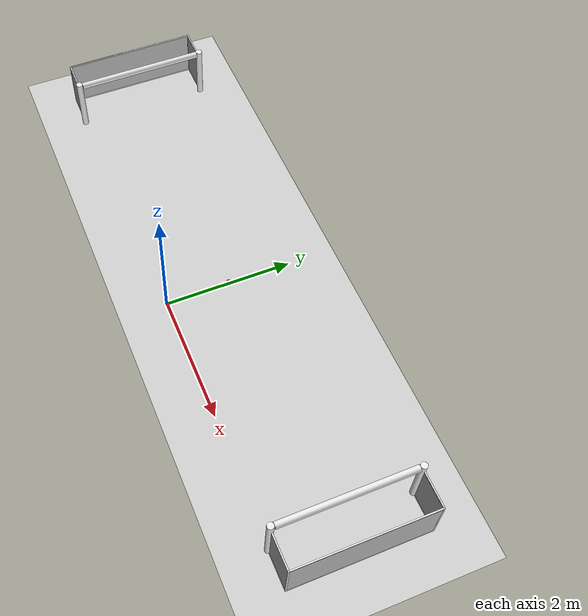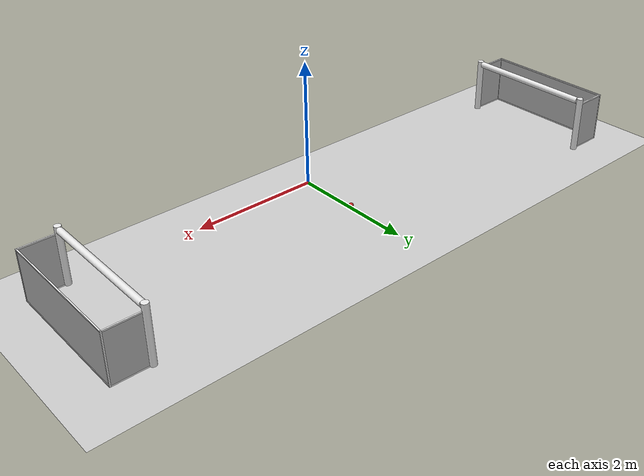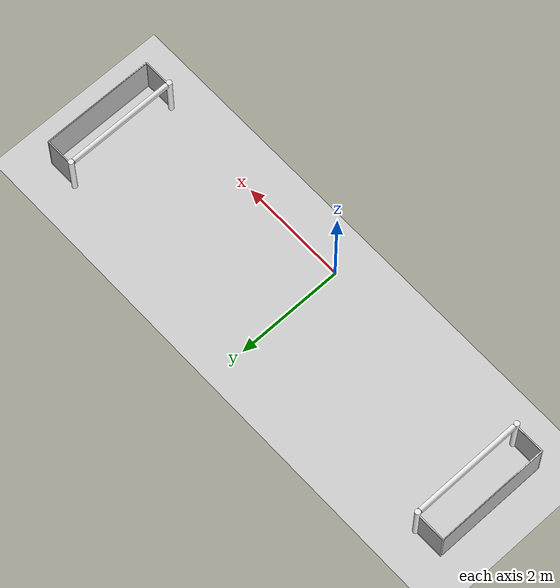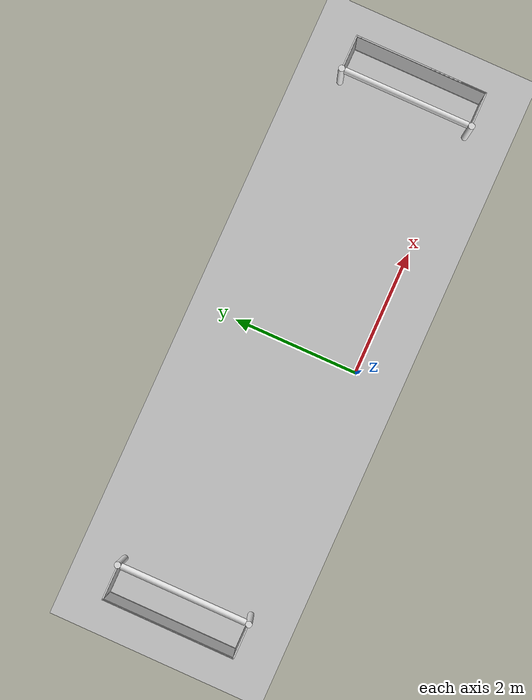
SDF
<sdf version="1.6">
 <world name="default">
  <light name="sun" type="directional">
   <pose>0 0 10 0 -0 0</pose>
   <diffuse>0.8 0.8 0.8 1</diffuse>
   <specular>0.2 0.2 0.2 1</specular>
   <attenuation>
    <range>1000</range>
    <constant>0.9</constant>
    <linear>0.01</linear>
    <quadratic>0.001</quadratic>
   </attenuation>
   <direction>-0.5 0.1 -0.9</direction>
  </light>
  <model name="ground_plane">
   <static>1</static>
   <link name="link">
    <collision name="collision">
     <geometry><plane><normal>0 0 1</normal><size>100 100</size></plane></geometry>
     <surface><friction><ode><mu>100</mu><mu2>50</mu2></ode></friction></surface>
    </collision>
    <visual name="visual">
     <cast_shadows>0</cast_shadows>
     <geometry><plane><normal>0 0 1</normal><size>100 100</size></plane></geometry>
     <material>
      <script><uri>file://media/materials/scripts/gazebo.material</uri><name>Gazebo/Grey</name></script>
     </material>
    </visual>
    <velocity_decay><linear>0</linear><angular>0</angular></velocity_decay>
   </link>
  </model>
  <physics name="default_physics" default="0" type="ode">
   <max_step_size>0.001</max_step_size>
   <real_time_factor>1</real_time_factor>
   <real_time_update_rate>1000</real_time_update_rate>
  </physics>
  <scene><ambient>0.4 0.4 0.4 1</ambient><background>0.7 0.7 0.7 1</background><shadows>1</shadows></scene>
  <spherical_coordinates>
   <surface_model>EARTH_WGS84</surface_model>
   <latitude_deg>0</latitude_deg>
   <longitude_deg>0</longitude_deg>
   <elevation>0</elevation>
   <heading_deg>0</heading_deg>
  </spherical_coordinates>
  <model name="foot_ball">
   <link name="link">
    <pose>0 0 0.0375 0 -0 0</pose>
    <inertial>
     <mass>0.3</mass>
     <inertia><ixx>1.2e-03</ixx><ixy>0</ixy><ixz>0</ixz><iyy>1.2e-03</iyy><iyz>0</iyz><izz>1.2e-03</izz></inertia>
    </inertial>
    <collision name="collision">
     <geometry><sphere><radius>0.037</radius></sphere></geometry>
     <surface>
      <bounce><restitution_coefficient>1</restitution_coefficient><threshold>0</threshold></bounce>
      <friction><ode><mu>0.3</mu><mu2>0.3</mu2></ode></friction>
     </surface>
    </collision>
    <visual name="visual">
     <geometry><sphere><radius>0.037</radius></sphere></geometry>
     <material>
      <script><uri>file://media/materials/scripts/gazebo.material</uri><name>Gazebo/Red</name></script>
     </material>
    </visual>
    <velocity_decay><linear>0.00025</linear><angular>0.00025</angular></velocity_decay>
   </link>
   <pose>0 1 0.01 0 -0 0</pose>
   <static>0</static>
  </model>
  <gravity>0 0 -9.8</gravity>
  <magnetic_field>6e-06 2.3e-05 -4.2e-05</magnetic_field>
  <atmosphere type="adiabatic"/>
  <audio><device>default</device></audio>
  <model name="unit_box">
   <model name="wall-1">
    <link name="link_2">
     <inertial>
      <mass>1</mass>
      <inertia>
       <ixx>0.166667</ixx>
       <ixy>0</ixy>
       <ixz>0</ixz>
       <iyy>0.166667</iyy>
       <iyz>0</iyz>
       <izz>0.166667</izz>
      </inertia>
     </inertial>
     <pose>-0 1e-06 0 0 -0 0</pose>
     <visual name="visual">
      <geometry><box><size>9 0.1 2</size></box></geometry>
      <material>
       <lighting>1</lighting>
       <script><uri>file://media/materials/scripts/gazebo.material</uri><name>Gazebo/Grey</name></script>
       <shader type="vertex"><normal_map>__default__</normal_map></shader>
       <ambient>0.3 0.3 0.3 1</ambient>
       <diffuse>0.7 0.7 0.7 1</diffuse>
       <specular>0.01 0.01 0.01 1</specular>
       <emissive>0 0 0 1</emissive>
      </material>
      <transparency>1</transparency>
     </visual>
     <collision name="collision">
      <geometry><box><size>9 0.1 2</size></box></geometry>
      <surface>
       <friction>
        <ode><mu>1</mu><mu2>1</mu2><fdir1>0 0 0</fdir1><slip1>0</slip1><slip2>0</slip2></ode>
        <torsional>
         <coefficient>1</coefficient>
         <patch_radius>0</patch_radius>
         <surface_radius>0</surface_radius>
         <use_patch_radius>1</use_patch_radius>
         <ode><slip>0</slip></ode>
        </torsional>
       </friction>
       <bounce><restitution_coefficient>0</restitution_coefficient><threshold>1e+06</threshold></bounce>
       <contact>
        <collide_without_contact>0</collide_without_contact>
        <collide_without_contact_bitmask>1</collide_without_contact_bitmask>
        <collide_bitmask>1</collide_bitmask>
        <ode>
         <soft_cfm>0</soft_cfm>
         <soft_erp>0.2</soft_erp>
         <kp>1e+13</kp>
         <kd>1</kd>
         <max_vel>0.01</max_vel>
         <min_depth>0</min_depth>
        </ode>
        <bullet>
         <split_impulse>1</split_impulse>
         <split_impulse_penetration_threshold>-0.01</split_impulse_penetration_threshold>
         <soft_cfm>0</soft_cfm>
         <soft_erp>0.2</soft_erp>
         <kp>1e+13</kp>
         <kd>1</kd>
        </bullet>
       </contact>
      </surface>
     </collision>
    </link>
    <static>1</static>
    <pose>3.98426 -0.483842 0 0 -0 0</pose>
   </model>
   <static>0</static>
   <pose>-3.95674 -1.5938 0 0 -0 0</pose>
  </model>
  <model name="unit_box_0">
   <model name="wall-1">
    <link name="link_2">
     <inertial>
      <mass>1</mass>
      <inertia>
       <ixx>0.166667</ixx>
       <ixy>0</ixy>
       <ixz>0</ixz>
       <iyy>0.166667</iyy>
       <iyz>0</iyz>
       <izz>0.166667</izz>
      </inertia>
     </inertial>
     <pose>-0 1e-06 0 0 -0 0</pose>
     <visual name="visual">
      <geometry><box><size>9 0.1 2</size></box></geometry>
      <material>
       <lighting>1</lighting>
       <script><uri>file://media/materials/scripts/gazebo.material</uri><name>Gazebo/Grey</name></script>
       <shader type="vertex"><normal_map>__default__</normal_map></shader>
       <ambient>0.3 0.3 0.3 1</ambient>
       <diffuse>0.7 0.7 0.7 1</diffuse>
       <specular>0.01 0.01 0.01 1</specular>
       <emissive>0 0 0 1</emissive>
      </material>
      <transparency>1</transparency>
     </visual>
     <collision name="collision">
      <geometry><box><size>9 0.1 2</size></box></geometry>
      <surface>
       <friction>
        <ode><mu>1</mu><mu2>1</mu2><fdir1>0 0 0</fdir1><slip1>0</slip1><slip2>0</slip2></ode>
        <torsional>
         <coefficient>1</coefficient>
         <patch_radius>0</patch_radius>
         <surface_radius>0</surface_radius>
         <use_patch_radius>1</use_patch_radius>
         <ode><slip>0</slip></ode>
        </torsional>
       </friction>
       <bounce><restitution_coefficient>0</restitution_coefficient><threshold>1e+06</threshold></bounce>
       <contact>
        <collide_without_contact>0</collide_without_contact>
        <collide_without_contact_bitmask>1</collide_without_contact_bitmask>
        <collide_bitmask>1</collide_bitmask>
        <ode>
         <soft_cfm>0</soft_cfm>
         <soft_erp>0.2</soft_erp>
         <kp>1e+13</kp>
         <kd>1</kd>
         <max_vel>0.01</max_vel>
         <min_depth>0</min_depth>
        </ode>
        <bullet>
         <split_impulse>1</split_impulse>
         <split_impulse_penetration_threshold>-0.01</split_impulse_penetration_threshold>
         <soft_cfm>0</soft_cfm>
         <soft_erp>0.2</soft_erp>
         <kp>1e+13</kp>
         <kd>1</kd>
        </bullet>
       </contact>
      </surface>
     </collision>
    </link>
    <static>1</static>
    <pose>3.98426 -0.483842 0 0 -0 0</pose>
   </model>
   <static>1</static>
   <pose>-3.97391 4.5594 0 0 -0 0</pose>
  </model>
  <model name="unit_box_1">
   <model name="wall-1">
    <link name="link_2">
     <inertial>
      <mass>1</mass>
      <inertia>
       <ixx>0.166667</ixx>
       <ixy>0</ixy>
       <ixz>0</ixz>
       <iyy>0.166667</iyy>
       <iyz>0</iyz>
       <izz>0.166667</izz>
      </inertia>
     </inertial>
     <pose>-0 1e-06 0 0 -0 0</pose>
     <visual name="visual">
      <geometry><box><size>9 0.1 2</size></box></geometry>
      <material>
       <lighting>1</lighting>
       <script><uri>file://media/materials/scripts/gazebo.material</uri><name>Gazebo/Grey</name></script>
       <shader type="vertex"><normal_map>__default__</normal_map></shader>
       <ambient>0.3 0.3 0.3 1</ambient>
       <diffuse>0.7 0.7 0.7 1</diffuse>
       <specular>0.01 0.01 0.01 1</specular>
       <emissive>0 0 0 1</emissive>
      </material>
      <transparency>1</transparency>
     </visual>
     <collision name="collision">
      <geometry><box><size>9 0.1 2</size></box></geometry>
      <surface>
       <friction>
        <ode><mu>1</mu><mu2>1</mu2><fdir1>0 0 0</fdir1><slip1>0</slip1><slip2>0</slip2></ode>
        <torsional>
         <coefficient>1</coefficient>
         <patch_radius>0</patch_radius>
         <surface_radius>0</surface_radius>
         <use_patch_radius>1</use_patch_radius>
         <ode><slip>0</slip></ode>
        </torsional>
       </friction>
       <bounce><restitution_coefficient>0</restitution_coefficient><threshold>1e+06</threshold></bounce>
       <contact>
        <collide_without_contact>0</collide_without_contact>
        <collide_without_contact_bitmask>1</collide_without_contact_bitmask>
        <collide_bitmask>1</collide_bitmask>
        <ode>
         <soft_cfm>0</soft_cfm>
         <soft_erp>0.2</soft_erp>
         <kp>1e+13</kp>
         <kd>1</kd>
         <max_vel>0.01</max_vel>
         <min_depth>0</min_depth>
        </ode>
        <bullet>
         <split_impulse>1</split_impulse>
         <split_impulse_penetration_threshold>-0.01</split_impulse_penetration_threshold>
         <soft_cfm>0</soft_cfm>
         <soft_erp>0.2</soft_erp>
         <kp>1e+13</kp>
         <kd>1</kd>
        </bullet>
       </contact>
      </surface>
     </collision>
    </link>
    <static>1</static>
    <pose>3.98426 -0.483842 0 0 -0 0</pose>
   </model>
   <static>1</static>
   <pose>4.1 -3 0 0 -0 1.5707</pose>
  </model>
  <model name="unit_box_2">
   <model name="wall-1">
    <link name="link_2">
     <inertial>
      <mass>1</mass>
      <inertia>
       <ixx>0.166667</ixx>
       <ixy>0</ixy>
       <ixz>0</ixz>
       <iyy>0.166667</iyy>
       <iyz>0</iyz>
       <izz>0.166667</izz>
      </inertia>
     </inertial>
     <pose>-0 1e-06 0 0 -0 0</pose>
     <visual name="visual">
      <geometry><box><size>9 0.1 2</size></box></geometry>
      <material>
       <lighting>1</lighting>
       <script><uri>file://media/materials/scripts/gazebo.material</uri><name>Gazebo/Grey</name></script>
       <shader type="vertex"><normal_map>__default__</normal_map></shader>
       <ambient>0.3 0.3 0.3 1</ambient>
       <diffuse>0.7 0.7 0.7 1</diffuse>
       <specular>0.01 0.01 0.01 1</specular>
       <emissive>0 0 0 1</emissive>
      </material>
      <transparency>1</transparency>
     </visual>
     <collision name="collision">
      <geometry><box><size>9 0.1 2</size></box></geometry>
      <surface>
       <friction>
        <ode><mu>1</mu><mu2>1</mu2><fdir1>0 0 0</fdir1><slip1>0</slip1><slip2>0</slip2></ode>
        <torsional>
         <coefficient>1</coefficient>
         <patch_radius>0</patch_radius>
         <surface_radius>0</surface_radius>
         <use_patch_radius>1</use_patch_radius>
         <ode><slip>0</slip></ode>
        </torsional>
       </friction>
       <bounce><restitution_coefficient>0</restitution_coefficient><threshold>1e+06</threshold></bounce>
       <contact>
        <collide_without_contact>0</collide_without_contact>
        <collide_without_contact_bitmask>1</collide_without_contact_bitmask>
        <collide_bitmask>1</collide_bitmask>
        <ode>
         <soft_cfm>0</soft_cfm>
         <soft_erp>0.2</soft_erp>
         <kp>1e+13</kp>
         <kd>1</kd>
         <max_vel>0.01</max_vel>
         <min_depth>0</min_depth>
        </ode>
        <bullet>
         <split_impulse>1</split_impulse>
         <split_impulse_penetration_threshold>-0.01</split_impulse_penetration_threshold>
         <soft_cfm>0</soft_cfm>
         <soft_erp>0.2</soft_erp>
         <kp>1e+13</kp>
         <kd>1</kd>
        </bullet>
       </contact>
      </surface>
     </collision>
    </link>
    <static>1</static>
    <pose>3.98426 -0.483842 0 0 -0 0</pose>
   </model>
   <static>1</static>
   <pose>-5.1 -3 0 0 -0 1.5707</pose>
  </model>
  <model name="robocup_3d_goal">
   <static>1</static>
   <link name="left_post">
    <pose>0 1.05 0.45 0 -0 0</pose>
    <collision name="collision">
     <geometry><cylinder><radius>0.05</radius><length>0.9</length></cylinder></geometry>
    </collision>
    <visual name="visual">
     <geometry><cylinder><radius>0.05</radius><length>0.9</length></cylinder></geometry>
     <material>
      <script><uri>file://media/materials/scripts/gazebo.material</uri><name>Gazebo/white</name></script>
     </material>
    </visual>
   </link>
   <link name="left_support_horiz_lower">
    <pose>0.3 1.05 0.01 0 -0 0</pose>
    <collision name="collision"><geometry><box><size>0.5 0.02 0.02</size></box></geometry></collision>
    <visual name="visual">
     <geometry><box><size>0.5 0.02 0.02</size></box></geometry>
     <material>
      <script><uri>file://media/materials/scripts/gazebo.material</uri><name>Gazebo/White</name></script>
     </material>
    </visual>
   </link>
   <link name="left_support_horiz_upper">
    <pose>0.3 1.05 0.79 0 -0 0</pose>
    <collision name="collision"><geometry><box><size>0.5 0.02 0.02</size></box></geometry></collision>
    <visual name="visual">
     <geometry><box><size>0.5 0.02 0.02</size></box></geometry>
     <material>
      <script><uri>file://media/materials/scripts/gazebo.material</uri><name>Gazebo/White</name></script>
     </material>
    </visual>
   </link>
   <link name="left_support_vertical">
    <pose>0.56 1.05 0.4 3.14159 1.57079 3.14159</pose>
    <collision name="collision"><geometry><box><size>0.8 0.02 0.02</size></box></geometry></collision>
    <visual name="visual">
     <geometry><box><size>0.8 0.02 0.02</size></box></geometry>
     <material>
      <script><uri>file://media/materials/scripts/gazebo.material</uri><name>Gazebo/White</name></script>
     </material>
    </visual>
   </link>
   <link name="right_support_horiz_lower">
    <pose>0.3 -1.05 0.01 0 -0 0</pose>
    <collision name="collision"><geometry><box><size>0.5 0.02 0.02</size></box></geometry></collision>
    <visual name="visual">
     <geometry><box><size>0.5 0.02 0.02</size></box></geometry>
     <material>
      <script><uri>file://media/materials/scripts/gazebo.material</uri><name>Gazebo/White</name></script>
     </material>
    </visual>
   </link>
   <link name="right_support_horiz_upper">
    <pose>0.3 -1.05 0.79 0 -0 0</pose>
    <collision name="collision"><geometry><box><size>0.5 0.02 0.02</size></box></geometry></collision>
    <visual name="visual">
     <geometry><box><size>0.5 0.02 0.02</size></box></geometry>
     <material>
      <script><uri>file://media/materials/scripts/gazebo.material</uri><name>Gazebo/White</name></script>
     </material>
    </visual>
   </link>
   <link name="right_support_vertical">
    <pose>0.56 -1.05 0.4 3.14159 1.57079 3.14159</pose>
    <collision name="collision"><geometry><box><size>0.8 0.02 0.02</size></box></geometry></collision>
    <visual name="visual">
     <geometry><box><size>0.8 0.02 0.02</size></box></geometry>
     <material>
      <script><uri>file://media/materials/scripts/gazebo.material</uri><name>Gazebo/White</name></script>
     </material>
    </visual>
   </link>
   <link name="center_support_horiz_lower">
    <pose>0.56 0 0.01 3.14159 1.57079 3.14159</pose>
    <collision name="collision"><geometry><box><size>0.02 2.08 0.02</size></box></geometry></collision>
    <visual name="visual">
     <geometry><box><size>0.02 2.08 0.02</size></box></geometry>
     <material>
      <script><uri>file://media/materials/scripts/gazebo.material</uri><name>Gazebo/White</name></script>
     </material>
    </visual>
   </link>
   <link name="center_support_horiz_upper">
    <pose>0.56 0 0.79 3.14159 1.57079 3.14159</pose>
    <collision name="collision"><geometry><box><size>0.02 2.08 0.02</size></box></geometry></collision>
    <visual name="visual">
     <geometry><box><size>0.02 2.08 0.02</size></box></geometry>
     <material>
      <script><uri>file://media/materials/scripts/gazebo.material</uri><name>Gazebo/White</name></script>
     </material>
    </visual>
   </link>
   <link name="right_post">
    <pose>0 -1.05 0.45 0 -0 0</pose>
    <collision name="collision">
     <geometry><cylinder><radius>0.05</radius><length>0.9</length></cylinder></geometry>
    </collision>
    <visual name="visual">
     <geometry><cylinder><radius>0.05</radius><length>0.9</length></cylinder></geometry>
     <material>
      <script><uri>file://media/materials/scripts/gazebo.material</uri><name>Gazebo/white</name></script>
     </material>
    </visual>
   </link>
   <link name="crossbar">
    <pose>0 0 0.85 1.57 1.57 0</pose>
    <collision name="collision">
     <geometry><cylinder><radius>0.05</radius><length>2</length></cylinder></geometry>
    </collision>
    <visual name="visual">
     <geometry><cylinder><radius>0.05</radius><length>2</length></cylinder></geometry>
     <material>
      <script><uri>file://media/materials/scripts/gazebo.material</uri><name>Gazebo/white</name></script>
     </material>
    </visual>
   </link>
   <link name="center_net">
    <pose>0.56 0 0.4 0 -0 0</pose>
    <collision name="collision"><geometry><box><size>0.01 2.1 0.8</size></box></geometry></collision>
    <visual name="visual">
     <geometry><box><size>0.01 2.1 0.8</size></box></geometry>
     <material>
      <script>
       <uri>model://robocup09_spl_field/materials/scripts/</uri>
       <uri>model://robocup09_spl_field/materials/textures/</uri>
       <name>RoboCup/Net</name>
      </script>
     </material>
    </visual>
   </link>
   <link name="left_net">
    <pose>0.3 1.05 0.4 0 -0 0</pose>
    <collision name="collision"><geometry><box><size>0.5 0.01 0.76</size></box></geometry></collision>
    <visual name="visual">
     <geometry><box><size>0.5 0.01 0.76</size></box></geometry>
     <material>
      <script>
       <uri>model://robocup09_spl_field/materials/scripts/</uri>
       <uri>model://robocup09_spl_field/materials/textures/</uri>
       <name>RoboCup/Net</name>
      </script>
     </material>
    </visual>
   </link>
   <link name="right_net">
    <pose>0.3 -1.05 0.4 0 -0 0</pose>
    <collision name="collision"><geometry><box><size>0.5 0.01 0.76</size></box></geometry></collision>
    <visual name="visual">
     <geometry><box><size>0.5 0.01 0.76</size></box></geometry>
     <material>
      <script>
       <uri>model://robocup09_spl_field/materials/scripts/</uri>
       <uri>model://robocup09_spl_field/materials/textures/</uri>
       <name>RoboCup/Net</name>
      </script>
     </material>
    </visual>
   </link>
   <pose>4 1 0 0 -0 0</pose>
  </model>
  <model name="robocup_3d_goal_0">
   <static>1</static>
   <link name="left_post">
    <pose>0 1.05 0.45 0 -0 0</pose>
    <collision name="collision">
     <geometry><cylinder><radius>0.05</radius><length>0.9</length></cylinder></geometry>
    </collision>
    <visual name="visual">
     <geometry><cylinder><radius>0.05</radius><length>0.9</length></cylinder></geometry>
     <material>
      <script><uri>file://media/materials/scripts/gazebo.material</uri><name>Gazebo/white</name></script>
     </material>
    </visual>
   </link>
   <link name="left_support_horiz_lower">
    <pose>0.3 1.05 0.01 0 -0 0</pose>
    <collision name="collision"><geometry><box><size>0.5 0.02 0.02</size></box></geometry></collision>
    <visual name="visual">
     <geometry><box><size>0.5 0.02 0.02</size></box></geometry>
     <material>
      <script><uri>file://media/materials/scripts/gazebo.material</uri><name>Gazebo/White</name></script>
     </material>
    </visual>
   </link>
   <link name="left_support_horiz_upper">
    <pose>0.3 1.05 0.79 0 -0 0</pose>
    <collision name="collision"><geometry><box><size>0.5 0.02 0.02</size></box></geometry></collision>
    <visual name="visual">
     <geometry><box><size>0.5 0.02 0.02</size></box></geometry>
     <material>
      <script><uri>file://media/materials/scripts/gazebo.material</uri><name>Gazebo/White</name></script>
     </material>
    </visual>
   </link>
   <link name="left_support_vertical">
    <pose>0.56 1.05 0.4 3.14159 1.57079 3.14159</pose>
    <collision name="collision"><geometry><box><size>0.8 0.02 0.02</size></box></geometry></collision>
    <visual name="visual">
     <geometry><box><size>0.8 0.02 0.02</size></box></geometry>
     <material>
      <script><uri>file://media/materials/scripts/gazebo.material</uri><name>Gazebo/White</name></script>
     </material>
    </visual>
   </link>
   <link name="right_support_horiz_lower">
    <pose>0.3 -1.05 0.01 0 -0 0</pose>
    <collision name="collision"><geometry><box><size>0.5 0.02 0.02</size></box></geometry></collision>
    <visual name="visual">
     <geometry><box><size>0.5 0.02 0.02</size></box></geometry>
     <material>
      <script><uri>file://media/materials/scripts/gazebo.material</uri><name>Gazebo/White</name></script>
     </material>
    </visual>
   </link>
   <link name="right_support_horiz_upper">
    <pose>0.3 -1.05 0.79 0 -0 0</pose>
    <collision name="collision"><geometry><box><size>0.5 0.02 0.02</size></box></geometry></collision>
    <visual name="visual">
     <geometry><box><size>0.5 0.02 0.02</size></box></geometry>
     <material>
      <script><uri>file://media/materials/scripts/gazebo.material</uri><name>Gazebo/White</name></script>
     </material>
    </visual>
   </link>
   <link name="right_support_vertical">
    <pose>0.56 -1.05 0.4 3.14159 1.57079 3.14159</pose>
    <collision name="collision"><geometry><box><size>0.8 0.02 0.02</size></box></geometry></collision>
    <visual name="visual">
     <geometry><box><size>0.8 0.02 0.02</size></box></geometry>
     <material>
      <script><uri>file://media/materials/scripts/gazebo.material</uri><name>Gazebo/White</name></script>
     </material>
    </visual>
   </link>
   <link name="center_support_horiz_lower">
    <pose>0.56 0 0.01 3.14159 1.57079 3.14159</pose>
    <collision name="collision"><geometry><box><size>0.02 2.08 0.02</size></box></geometry></collision>
    <visual name="visual">
     <geometry><box><size>0.02 2.08 0.02</size></box></geometry>
     <material>
      <script><uri>file://media/materials/scripts/gazebo.material</uri><name>Gazebo/White</name></script>
     </material>
    </visual>
   </link>
   <link name="center_support_horiz_upper">
    <pose>0.56 0 0.79 3.14159 1.57079 3.14159</pose>
    <collision name="collision"><geometry><box><size>0.02 2.08 0.02</size></box></geometry></collision>
    <visual name="visual">
     <geometry><box><size>0.02 2.08 0.02</size></box></geometry>
     <material>
      <script><uri>file://media/materials/scripts/gazebo.material</uri><name>Gazebo/White</name></script>
     </material>
    </visual>
   </link>
   <link name="right_post">
    <pose>0 -1.05 0.45 0 -0 0</pose>
    <collision name="collision">
     <geometry><cylinder><radius>0.05</radius><length>0.9</length></cylinder></geometry>
    </collision>
    <visual name="visual">
     <geometry><cylinder><radius>0.05</radius><length>0.9</length></cylinder></geometry>
     <material>
      <script><uri>file://media/materials/scripts/gazebo.material</uri><name>Gazebo/white</name></script>
     </material>
    </visual>
   </link>
   <link name="crossbar">
    <pose>0 0 0.85 1.57 1.57 0</pose>
    <collision name="collision">
     <geometry><cylinder><radius>0.05</radius><length>2</length></cylinder></geometry>
    </collision>
    <visual name="visual">
     <geometry><cylinder><radius>0.05</radius><length>2</length></cylinder></geometry>
     <material>
      <script><uri>file://media/materials/scripts/gazebo.material</uri><name>Gazebo/white</name></script>
     </material>
    </visual>
   </link>
   <link name="center_net">
    <pose>0.56 0 0.4 0 -0 0</pose>
    <collision name="collision"><geometry><box><size>0.01 2.1 0.8</size></box></geometry></collision>
    <visual name="visual">
     <geometry><box><size>0.01 2.1 0.8</size></box></geometry>
     <material>
      <script>
       <uri>model://robocup09_spl_field/materials/scripts/</uri>
       <uri>model://robocup09_spl_field/materials/textures/</uri>
       <name>RoboCup/Net</name>
      </script>
     </material>
    </visual>
   </link>
   <link name="left_net">
    <pose>0.3 1.05 0.4 0 -0 0</pose>
    <collision name="collision"><geometry><box><size>0.5 0.01 0.76</size></box></geometry></collision>
    <visual name="visual">
     <geometry><box><size>0.5 0.01 0.76</size></box></geometry>
     <material>
      <script>
       <uri>model://robocup09_spl_field/materials/scripts/</uri>
       <uri>model://robocup09_spl_field/materials/textures/</uri>
       <name>RoboCup/Net</name>
      </script>
     </material>
    </visual>
   </link>
   <link name="right_net">
    <pose>0.3 -1.05 0.4 0 -0 0</pose>
    <collision name="collision"><geometry><box><size>0.5 0.01 0.76</size></box></geometry></collision>
    <visual name="visual">
     <geometry><box><size>0.5 0.01 0.76</size></box></geometry>
     <material>
      <script>
       <uri>model://robocup09_spl_field/materials/scripts/</uri>
       <uri>model://robocup09_spl_field/materials/textures/</uri>
       <name>RoboCup/Net</name>
      </script>
     </material>
    </visual>
   </link>
   <pose>-4 1 0 0 -0 3.14159</pose>
  </model>
 </world>
</sdf>
